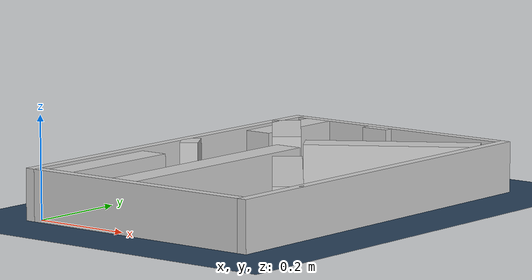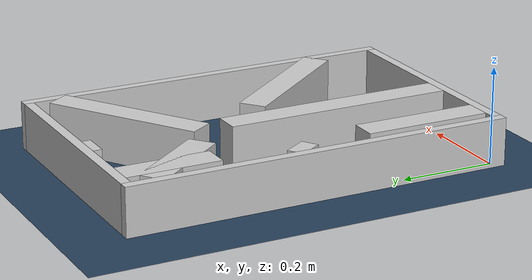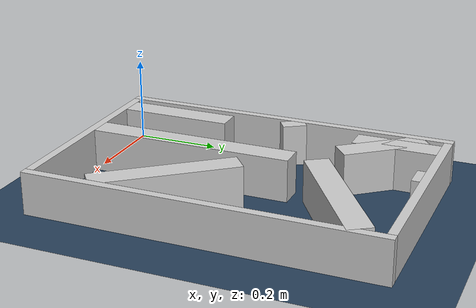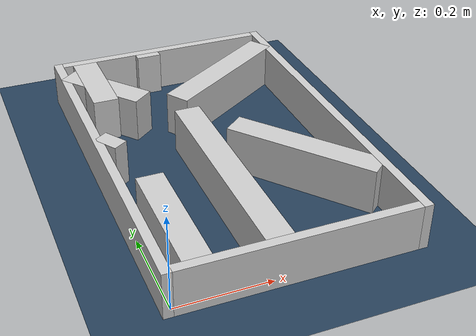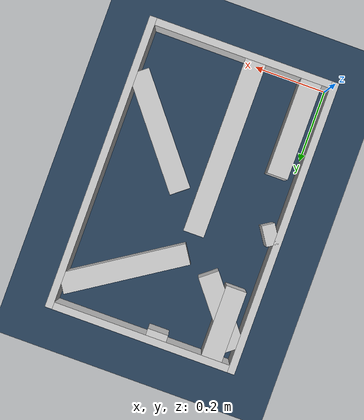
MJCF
<?xml version="1.0" ?>
<mujoco model="generated_real_template">
  <compiler angle="degree"/>
  <option timestep="0.002" integrator="implicitfast" iterations="100" cone="elliptic"/>
  <default>
    <geom density="1"/>
  </default>
  <asset>
    <texture builtin="gradient" height="3072" rgb1="0.3 0.5 0.7" rgb2="0 0 0" type="skybox" width="512"/>
    <texture builtin="checker" height="300" mark="edge" markrgb="0.8 0.8 0.8" name="groundplane" rgb1="0.2 0.3 0.4" rgb2="0.1 0.2 0.3" type="2d" width="300"/>
    <material name="groundplane" reflectance="0.2" texrepeat="5 5" texture="groundplane" texuniform="true"/>
  </asset>
  <worldbody>
    <light dir="0 0 -1" directional="true" pos="0 0 1.5"/>
    <geom name="floor" type="plane" condim="4" friction="0.5 0.005 0.001" material="groundplane" size="0 0 0.05"/>
    <body name="walls">
      <geom name="wall_boundary_left" type="box" condim="4" friction="1.0 0.005 0.0001" rgba="0.8 0.8 0.8 1" pos="-0.010000 0.387500 0.050000" euler="0 0 0.000000" size="0.010000 0.407500 0.050000"/>
      <geom name="wall_boundary_right" type="box" condim="4" friction="1.0 0.005 0.0001" rgba="0.8 0.8 0.8 1" pos="0.500000 0.387500 0.050000" euler="0 0 0.000000" size="0.010000 0.407500 0.050000"/>
      <geom name="wall_boundary_bottom" type="box" condim="4" friction="1.0 0.005 0.0001" rgba="0.8 0.8 0.8 1" pos="0.245000 -0.010000 0.050000" euler="0 0 0.000000" size="0.245000 0.010000 0.050000"/>
      <geom name="wall_boundary_top" type="box" condim="4" friction="1.0 0.005 0.0001" rgba="0.8 0.8 0.8 1" pos="0.245000 0.785000 0.050000" euler="0 0 0.000000" size="0.245000 0.010000 0.050000"/>
      <geom name="wall_inner_1_1" type="box" condim="4" friction="1.0 0.005 0.0001" rgba="0.8 0.8 0.8 1" pos="0.346177 0.630502 0.050000" euler="0 0 -147.066694" size="0.171359 0.028500 0.050000"/>
      <geom name="wall_inner_1_2" type="box" condim="4" friction="1.0 0.005 0.0001" rgba="0.8 0.8 0.8 1" pos="0.015031 0.416001 0.050000" euler="0 0 -147.066694" size="0.017909 0.028500 0.050000"/>
      <geom name="wall_inner_2_1" type="box" condim="4" friction="1.0 0.005 0.0001" rgba="0.8 0.8 0.8 1" pos="0.050768 0.132482 0.050000" euler="0 0 90.000000" size="0.132482 0.028500 0.050000"/>
      <geom name="wall_inner_2_2" type="box" condim="4" friction="1.0 0.005 0.0001" rgba="0.8 0.8 0.8 1" pos="0.050768 0.677525 0.050000" euler="0 0 90.000000" size="0.097475 0.028500 0.050000"/>
      <geom name="wall_inner_3_1" type="box" condim="4" friction="1.0 0.005 0.0001" rgba="0.8 0.8 0.8 1" pos="0.067826 0.650658 0.050000" euler="0 0 -51.193074" size="0.104701 0.028500 0.050000"/>
      <geom name="wall_inner_3_2" type="box" condim="4" friction="1.0 0.005 0.0001" rgba="0.8 0.8 0.8 1" pos="0.383000 0.258758 0.050000" euler="0 0 -51.193074" size="0.167210 0.028500 0.050000"/>
      <geom name="wall_inner_4_1" type="box" condim="4" friction="1.0 0.005 0.0001" rgba="0.8 0.8 0.8 1" pos="0.206733 0.241373 0.050000" euler="0 0 90.000000" size="0.241373 0.028500 0.050000"/>
      <geom name="wall_inner_4_2" type="box" condim="4" friction="1.0 0.005 0.0001" rgba="0.8 0.8 0.8 1" pos="0.206733 0.765681 0.050000" euler="0 0 90.000000" size="0.009319 0.028500 0.050000"/>
    </body>
  </worldbody>
</mujoco>
